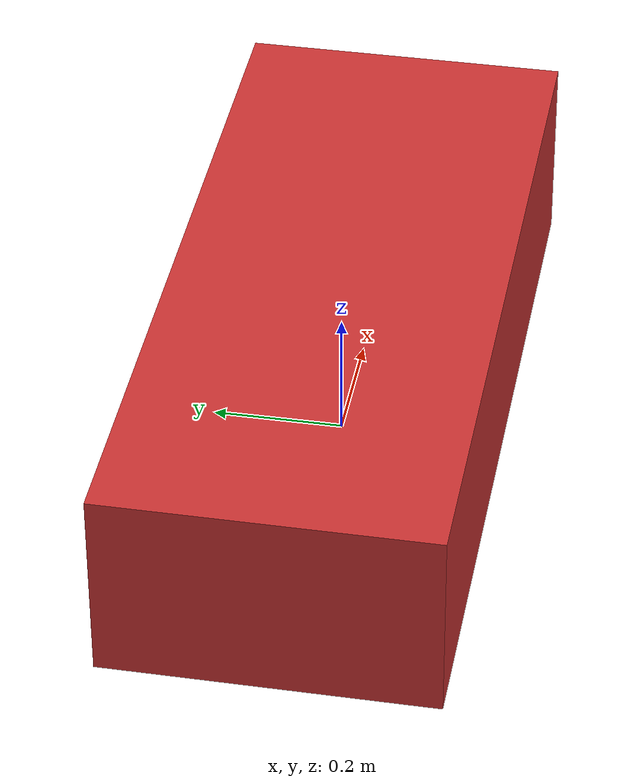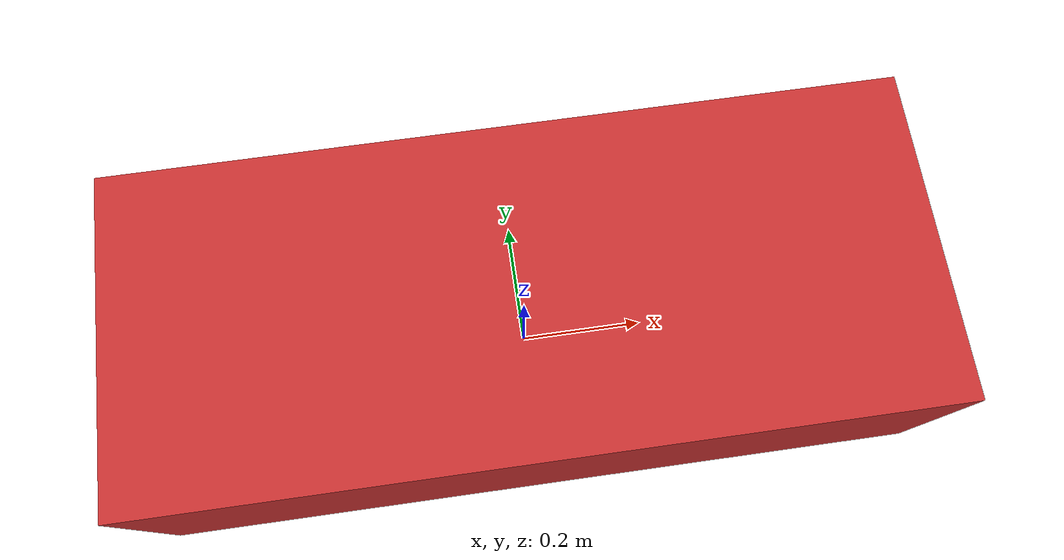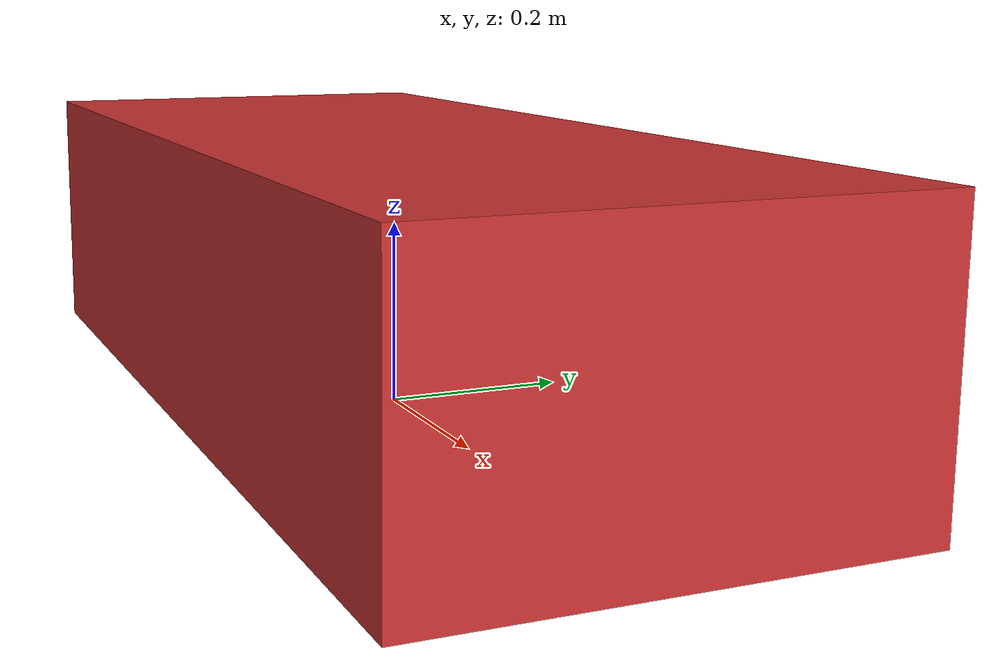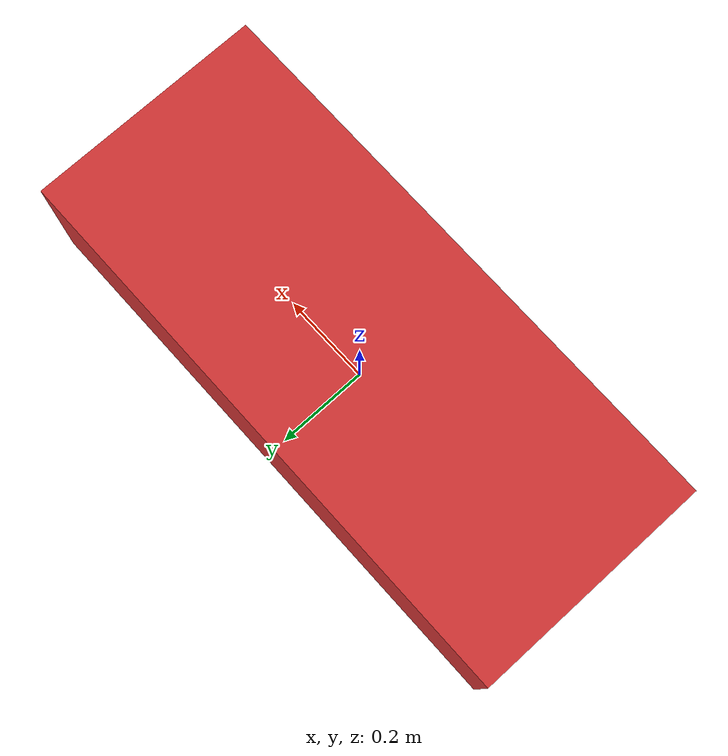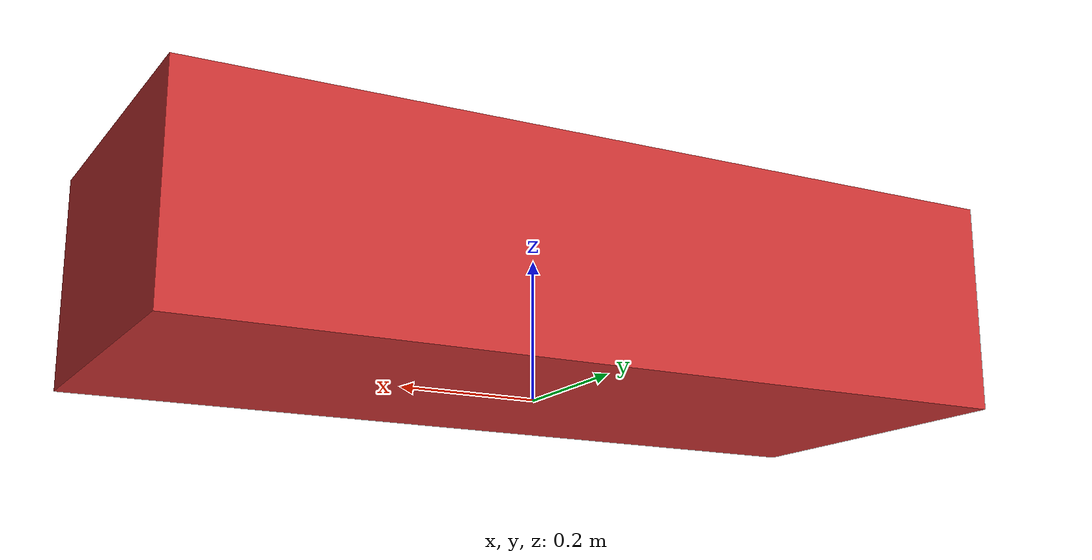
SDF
<?xml version="1.0" ?>
<sdf version="1.6">
  <model name="obstacle_vehicle">
    <static>true</static>
    <link name="chassis">
      <pose>0 0 0.15 0 0 0</pose>
      <inertial>
        <mass>5.0</mass>
      </inertial>
      <visual name="visual">
        <geometry>
          <box>
            <size>1.2 0.5 0.3</size>
          </box>
        </geometry>
        <material>
          <ambient>0.8 0.2 0.2 1</ambient>
          <diffuse>0.8 0.2 0.2 1</diffuse>
          <specular>0.1 0.1 0.1 1</specular>
        </material>
      </visual>
      <collision name="collision">
        <geometry>
          <box>
            <size>1.2 0.5 0.3</size>
          </box>
        </geometry>
      </collision>
    </link>
  </model>
</sdf>
